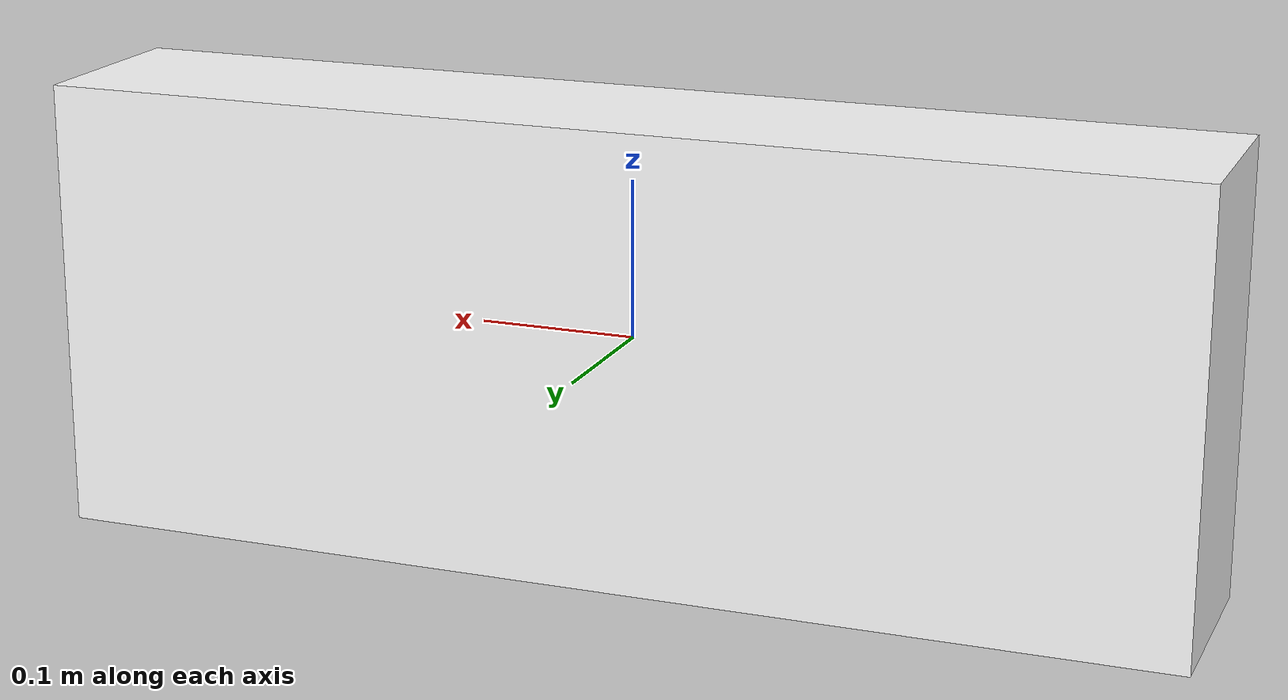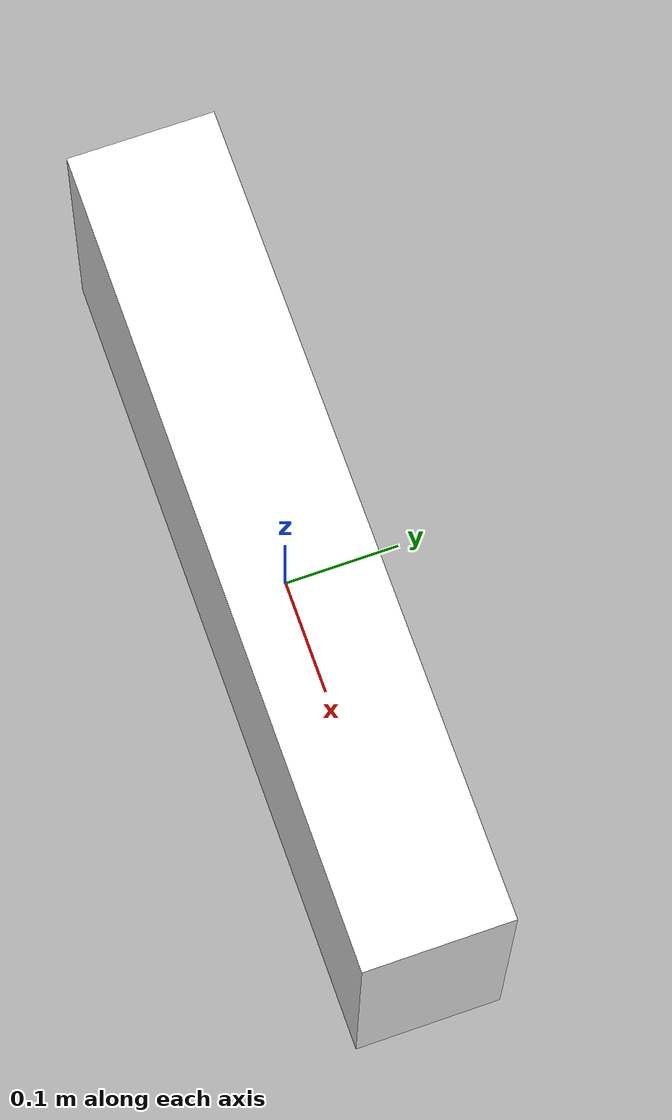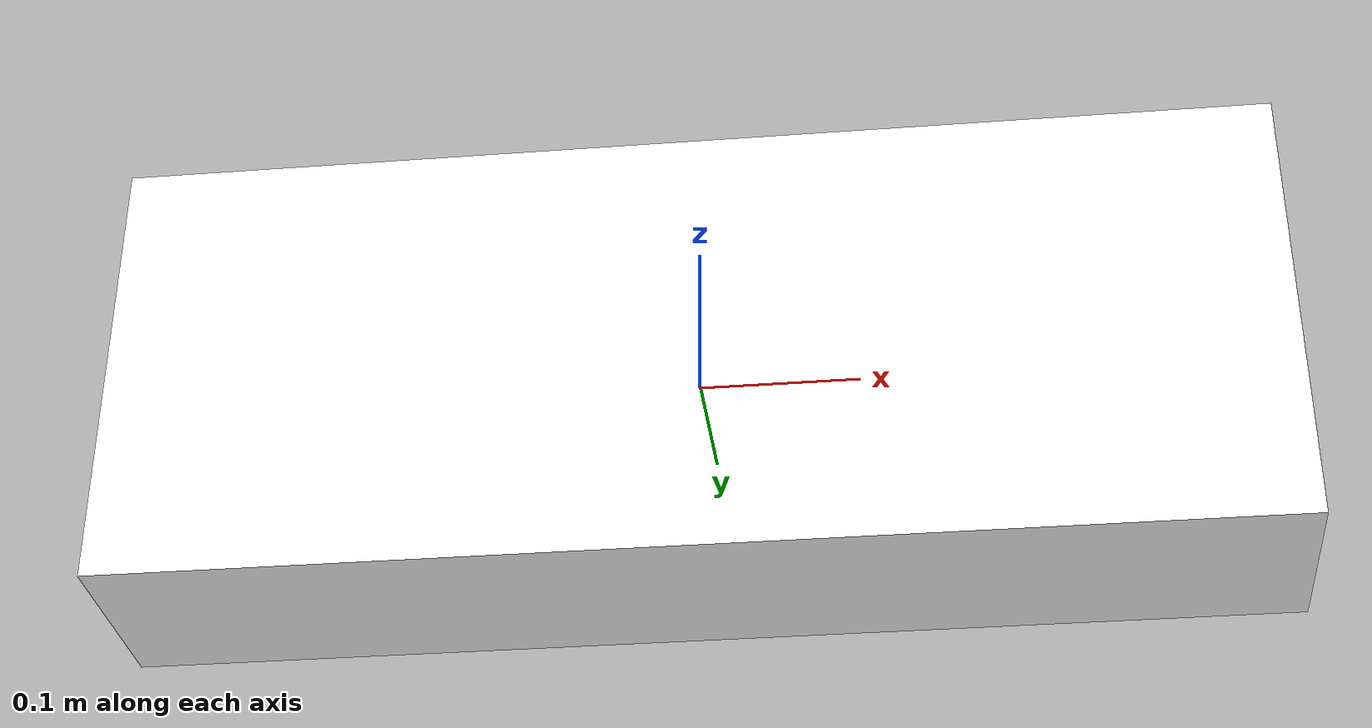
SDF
<?xml version='1.0'?>
<sdf version='1.7'>
  <model name='barricade'>
  <plugin filename="gz-sim-contact-system"
          name="gz::sim::systems::Contact">
    </plugin>
  <static>true</static>
    <link name='link'>
      <inertial>
        <mass>0.245303</mass>
        <inertia>
          <ixx>0.000221867</ixx>
          <ixy>0</ixy>
          <ixz>0</ixz>
          <iyy>0.00228889</iyy>
          <iyz>0</iyz>
          <izz>0.00232105</izz>
        </inertia>
        <pose>0 0 0 0 -0 0</pose>
      </inertial>
      <self_collide>0</self_collide>
      <enable_wind>0</enable_wind>
      <kinematic>0</kinematic>
      <pose>0 0 0 0 -0 0</pose>
      <visual name='visual'>
        <geometry>
          <box>
            <size>0.727613 0.128825 0.288118</size>
          </box>
        </geometry>
        <material>
          <diffuse>1.0 1.0 1.0</diffuse>
          <specular>1.0 1.0 1.0</specular>
          <pbr>
          <metal>
          <albedo_map>materials/textures/blue.png</albedo_map>
          </metal>
          </pbr>
          <shader type='pixel'/>
        </material>
        <pose>0 0 0 0 -0 0</pose>
        <transparency>0</transparency>
        <cast_shadows>1</cast_shadows>
      </visual>
      <collision name='collision'>
        <laser_retro>0</laser_retro>
        <max_contacts>10</max_contacts>
        <pose>0 0 0 0 -0 0</pose>
        <geometry>
          <box>
            <size>0.727613 0.128825 0.288118</size>
          </box>
        </geometry>
        <surface>
          <friction>
            <ode>
              <mu>1</mu>
              <mu2>1</mu2>
              <fdir1>0 0 0</fdir1>
              <slip1>0</slip1>
              <slip2>0</slip2>
            </ode>
            <torsional>
              <coefficient>1</coefficient>
              <patch_radius>0</patch_radius>
              <surface_radius>0</surface_radius>
              <use_patch_radius>1</use_patch_radius>
              <ode>
                <slip>0</slip>
              </ode>
            </torsional>
          </friction>
          <bounce>
            <restitution_coefficient>0</restitution_coefficient>
            <threshold>1e+06</threshold>
          </bounce>
          <contact>
            <collide_without_contact>0</collide_without_contact>
            <collide_without_contact_bitmask>1</collide_without_contact_bitmask>
            <collide_bitmask>1</collide_bitmask>
            <ode>
              <soft_cfm>0</soft_cfm>
              <soft_erp>0.2</soft_erp>
              <kp>1e+13</kp>
              <kd>1</kd>
              <max_vel>0.01</max_vel>
              <min_depth>0</min_depth>
            </ode>
            <bullet>
              <split_impulse>1</split_impulse>
              <split_impulse_penetration_threshold>-0.01</split_impulse_penetration_threshold>
              <soft_cfm>0</soft_cfm>
              <soft_erp>0.2</soft_erp>
              <kp>1e+13</kp>
              <kd>1</kd>
            </bullet>
          </contact>
        </surface>
      </collision>
      <sensor name='sensor_contact' type='contact'>
          <contact>
            <collision>collision</collision>
            <topic>/collision_detect</topic>
          </contact>
          <always_on>1</always_on>
          <update_rate>100</update_rate>
        </sensor>
    </link>
    <static>1</static>
    <allow_auto_disable>1</allow_auto_disable>
  </model>
</sdf>
